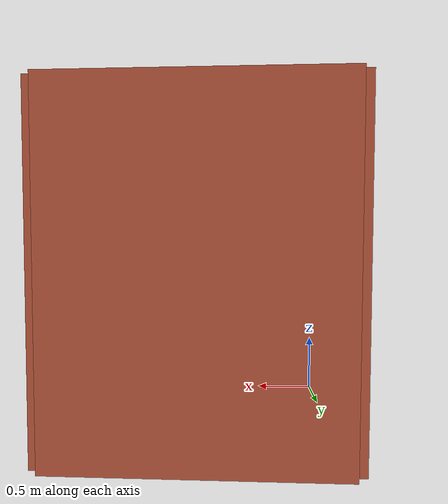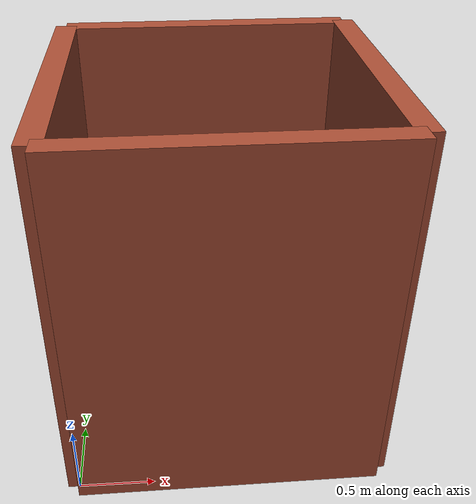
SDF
<sdf version="1.7"><model name="Maze_Test"><pose>0 0 0 0 -0 0</pose><static>1</static><link name="Wall_1"><collision name="Wall_1_Collision"><geometry><box><size>2 0.15 2.5</size></box></geometry><pose>0 0 1.25 0 -0 0</pose></collision><visual name="Wall_1_Visual"><pose>0 0 1.25 0 -0 0</pose><geometry><box><size>2 0.15 2.5</size></box></geometry><material><script><uri>file://media/materials/scripts/gazebo.material</uri><name>Gazebo/Bricks</name></script><ambient>1 1 1 1</ambient></material><meta><layer>0</layer></meta></visual><pose>0 1.0 0 0 0 1.57</pose></link><link name="Wall_2"><collision name="Wall_2_Collision"><geometry><box><size>2 0.15 2.5</size></box></geometry><pose>0 0 1.25 0 -0 0</pose></collision><visual name="Wall_2_Visual"><pose>0 0 1.25 0 -0 0</pose><geometry><box><size>2 0.15 2.5</size></box></geometry><material><script><uri>file://media/materials/scripts/gazebo.material</uri><name>Gazebo/Bricks</name></script><ambient>1 1 1 1</ambient></material><meta><layer>0</layer></meta></visual><pose>2 1.0 0 0 0 1.57</pose></link><link name="Wall_3"><collision name="Wall_3_Collision"><geometry><box><size>2 0.15 2.5</size></box></geometry><pose>0 0 1.25 0 -0 0</pose></collision><visual name="Wall_3_Visual"><pose>0 0 1.25 0 -0 0</pose><geometry><box><size>2 0.15 2.5</size></box></geometry><material><script><uri>file://media/materials/scripts/gazebo.material</uri><name>Gazebo/Bricks</name></script><ambient>1 1 1 1</ambient></material><meta><layer>0</layer></meta></visual><pose>1.0 0 0 0 0 0</pose></link><link name="Wall_4"><collision name="Wall_4_Collision"><geometry><box><size>2 0.15 2.5</size></box></geometry><pose>0 0 1.25 0 -0 0</pose></collision><visual name="Wall_4_Visual"><pose>0 0 1.25 0 -0 0</pose><geometry><box><size>2 0.15 2.5</size></box></geometry><material><script><uri>file://media/materials/scripts/gazebo.material</uri><name>Gazebo/Bricks</name></script><ambient>1 1 1 1</ambient></material><meta><layer>0</layer></meta></visual><pose>1.0 2 0 0 0 0</pose></link></model></sdf>
